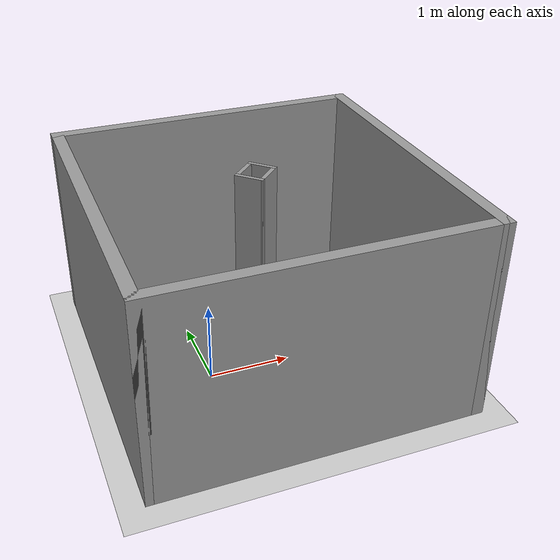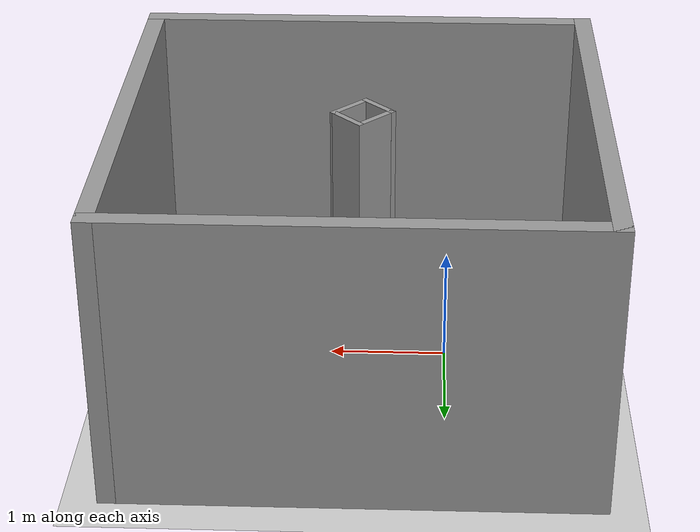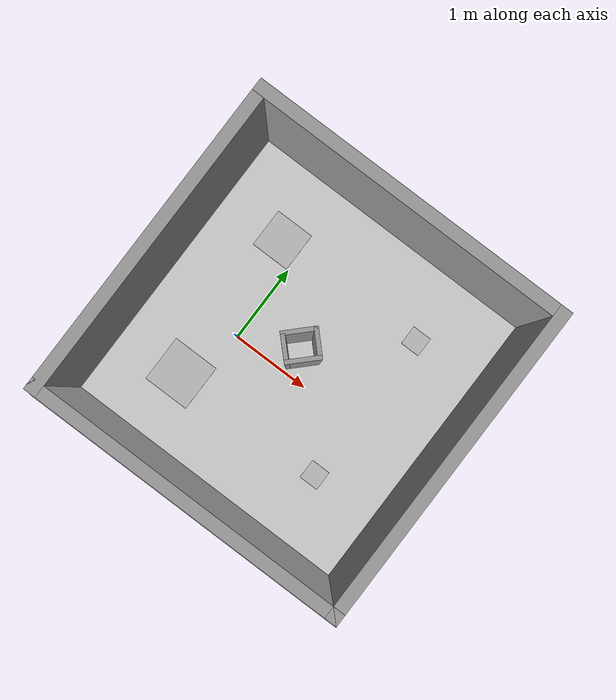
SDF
<?xml version="1.0" ?>
<sdf version="1.4">
  <world name="default">
    <include>
      <uri>model://ground_plane</uri>
    </include>
    <include>
      <uri>model://sun</uri>
    </include>

    <!-- Only one ROS interface plugin is required per world, as any other plugin can connect a Gazebo
         topic to a ROS topic (or vise versa). -->
    <plugin name="ros_interface_plugin" filename="librotors_gazebo_ros_interface_plugin.so"/>

    <spherical_coordinates>
      <surface_model>EARTH_WGS84</surface_model>
      <latitude_deg>47.3667</latitude_deg>
      <longitude_deg>8.5500</longitude_deg>
      <elevation>500.0</elevation>
      <heading_deg>0</heading_deg>
    </spherical_coordinates>
    <physics type='ode'>
      <ode>
        <solver>
          <type>quick</type>
          <iters>1000</iters>
          <sor>1.3</sor>
        </solver>
        <constraints>
          <cfm>0</cfm>
          <erp>0.2</erp>
          <contact_max_correcting_vel>100</contact_max_correcting_vel>
          <contact_surface_layer>0.001</contact_surface_layer>
        </constraints>
      </ode>
      <max_step_size>0.01</max_step_size>
      <real_time_factor>1</real_time_factor>
      <real_time_update_rate>100</real_time_update_rate>
      <gravity>0 0 -9.8</gravity>
    </physics>
    <model name='Untitled'>
      <pose>0.724051 0.24636 0 0 -0 0</pose>
      <link name='Wall_10'>
        <collision name='Wall_10_Collision'>
          <geometry>
            <box>
              <size>4 0.15 2.5</size>
            </box>
          </geometry>
          <pose>0 0 1.25 0 -0 0</pose>
          <max_contacts>10</max_contacts>
          <surface>
            <contact>
              <ode/>
            </contact>
            <bounce/>
            <friction>
              <torsional>
                <ode/>
              </torsional>
              <ode/>
            </friction>
          </surface>
        </collision>
        <visual name='Wall_10_Visual'>
          <pose>0 0 1.25 0 -0 0</pose>
          <geometry>
            <box>
              <size>4 0.15 2.5</size>
            </box>
          </geometry>
          <material>
            <script>
              <uri>file://media/materials/scripts/gazebo.material</uri>
              <name>Gazebo/Grey</name>
            </script>
            <ambient>1 1 1 1</ambient>
          </material>
          <meta>
            <layer>0</layer>
          </meta>
        </visual>
        <pose>1.925 0 0 0 -0 1.5708</pose>
        <self_collide>0</self_collide>
        <enable_wind>0</enable_wind>
        <kinematic>0</kinematic>
      </link>
      <link name='Wall_13'>
        <collision name='Wall_13_Collision'>
          <geometry>
            <box>
              <size>4 0.15 2.5</size>
            </box>
          </geometry>
          <pose>0 0 1.25 0 -0 0</pose>
          <max_contacts>10</max_contacts>
          <surface>
            <contact>
              <ode/>
            </contact>
            <bounce/>
            <friction>
              <torsional>
                <ode/>
              </torsional>
              <ode/>
            </friction>
          </surface>
        </collision>
        <visual name='Wall_13_Visual'>
          <pose>0 0 1.25 0 -0 0</pose>
          <geometry>
            <box>
              <size>4 0.15 2.5</size>
            </box>
          </geometry>
          <material>
            <script>
              <uri>file://media/materials/scripts/gazebo.material</uri>
              <name>Gazebo/Grey</name>
            </script>
            <ambient>1 1 1 1</ambient>
          </material>
          <meta>
            <layer>0</layer>
          </meta>
        </visual>
        <pose>0 1.925 0 0 -0 3.14159</pose>
        <self_collide>0</self_collide>
        <enable_wind>0</enable_wind>
        <kinematic>0</kinematic>
      </link>
      <link name='Wall_14'>
        <collision name='Wall_14_Collision'>
          <geometry>
            <box>
              <size>4 0.15 2.5</size>
            </box>
          </geometry>
          <pose>0 0 1.25 0 -0 0</pose>
          <max_contacts>10</max_contacts>
          <surface>
            <contact>
              <ode/>
            </contact>
            <bounce/>
            <friction>
              <torsional>
                <ode/>
              </torsional>
              <ode/>
            </friction>
          </surface>
        </collision>
        <visual name='Wall_14_Visual'>
          <pose>0 0 1.25 0 -0 0</pose>
          <geometry>
            <box>
              <size>4 0.15 2.5</size>
            </box>
          </geometry>
          <material>
            <script>
              <uri>file://media/materials/scripts/gazebo.material</uri>
              <name>Gazebo/Grey</name>
            </script>
            <ambient>1 1 1 1</ambient>
          </material>
          <meta>
            <layer>0</layer>
          </meta>
        </visual>
        <pose>-1.925 0 0 0 -0 -1.5708</pose>
        <self_collide>0</self_collide>
        <enable_wind>0</enable_wind>
        <kinematic>0</kinematic>
      </link>
      <link name='Wall_21'>
        <collision name='Wall_21_Collision'>
          <geometry>
            <box>
              <size>0.400395 0.05 2.5</size>
            </box>
          </geometry>
          <pose>0 0 1.25 0 -0 0</pose>
          <max_contacts>10</max_contacts>
          <surface>
            <contact>
              <ode/>
            </contact>
            <bounce/>
            <friction>
              <torsional>
                <ode/>
              </torsional>
              <ode/>
            </friction>
          </surface>
        </collision>
        <visual name='Wall_21_Visual'>
          <pose>0 0 1.25 0 -0 0</pose>
          <geometry>
            <box>
              <size>0.400395 0.05 2.5</size>
            </box>
          </geometry>
          <material>
            <script>
              <uri>file://media/materials/scripts/gazebo.material</uri>
              <name>Gazebo/Grey</name>
            </script>
            <ambient>1 1 1 1</ambient>
          </material>
          <meta>
            <layer>0</layer>
          </meta>
        </visual>
        <pose>-0.119051 0.17064 0 0 -0 0.785398</pose>
        <self_collide>0</self_collide>
        <enable_wind>0</enable_wind>
        <kinematic>0</kinematic>
      </link>
      <link name='Wall_22'>
        <collision name='Wall_22_Collision'>
          <geometry>
            <box>
              <size>0.35 0.05 2.5</size>
            </box>
          </geometry>
          <pose>0 0 1.25 0 -0 0</pose>
          <max_contacts>10</max_contacts>
          <surface>
            <contact>
              <ode/>
            </contact>
            <bounce/>
            <friction>
              <torsional>
                <ode/>
              </torsional>
              <ode/>
            </friction>
          </surface>
        </collision>
        <visual name='Wall_22_Visual'>
          <pose>0 0 1.25 0 -0 0</pose>
          <geometry>
            <box>
              <size>0.35 0.05 2.5</size>
            </box>
          </geometry>
          <material>
            <script>
              <uri>file://media/materials/scripts/gazebo.material</uri>
              <name>Gazebo/Grey</name>
            </script>
            <ambient>1 1 1 1</ambient>
          </material>
          <meta>
            <layer>0</layer>
          </meta>
        </visual>
        <pose>0.110449 0.18764 0 0 -0 -0.792457</pose>
        <self_collide>0</self_collide>
        <enable_wind>0</enable_wind>
        <kinematic>0</kinematic>
      </link>
      <link name='Wall_24'>
        <collision name='Wall_24_Collision'>
          <geometry>
            <box>
              <size>0.35 0.05 2.5</size>
            </box>
          </geometry>
          <pose>0 0 1.25 0 -0 0</pose>
          <max_contacts>10</max_contacts>
          <surface>
            <contact>
              <ode/>
            </contact>
            <bounce/>
            <friction>
              <torsional>
                <ode/>
              </torsional>
              <ode/>
            </friction>
          </surface>
        </collision>
        <visual name='Wall_24_Visual'>
          <pose>0 0 1.25 0 -0 0</pose>
          <geometry>
            <box>
              <size>0.35 0.05 2.5</size>
            </box>
          </geometry>
          <material>
            <script>
              <uri>file://media/materials/scripts/gazebo.material</uri>
              <name>Gazebo/Grey</name>
            </script>
            <ambient>1 1 1 1</ambient>
          </material>
          <meta>
            <layer>0</layer>
          </meta>
        </visual>
        <pose>-0.137051 -0.05936 0 0 -0 -0.785398</pose>
        <self_collide>0</self_collide>
        <enable_wind>0</enable_wind>
        <kinematic>0</kinematic>
      </link>
      <link name='Wall_27'>
        <collision name='Wall_27_Collision'>
          <geometry>
            <box>
              <size>0.398597 0.05 2.5</size>
            </box>
          </geometry>
          <pose>0 0 1.25 0 -0 0</pose>
          <max_contacts>10</max_contacts>
          <surface>
            <contact>
              <ode/>
            </contact>
            <bounce/>
            <friction>
              <torsional>
                <ode/>
              </torsional>
              <ode/>
            </friction>
          </surface>
        </collision>
        <visual name='Wall_27_Visual'>
          <pose>0 0 1.25 0 -0 0</pose>
          <geometry>
            <box>
              <size>0.398597 0.05 2.5</size>
            </box>
          </geometry>
          <material>
            <script>
              <uri>file://media/materials/scripts/gazebo.material</uri>
              <name>Gazebo/Grey</name>
            </script>
            <ambient>1 1 1 1</ambient>
          </material>
          <meta>
            <layer>0</layer>
          </meta>
        </visual>
        <pose>0.092449 -0.04236 0 0 -0 0.78337</pose>
        <self_collide>0</self_collide>
        <enable_wind>0</enable_wind>
        <kinematic>0</kinematic>
      </link>
      <link name='Wall_9'>
        <collision name='Wall_9_Collision'>
          <geometry>
            <box>
              <size>4 0.15 2.5</size>
            </box>
          </geometry>
          <pose>0 0 1.25 0 -0 0</pose>
          <max_contacts>10</max_contacts>
          <surface>
            <contact>
              <ode/>
            </contact>
            <bounce/>
            <friction>
              <torsional>
                <ode/>
              </torsional>
              <ode/>
            </friction>
          </surface>
        </collision>
        <visual name='Wall_9_Visual'>
          <pose>0 0 1.25 0 -0 0</pose>
          <geometry>
            <box>
              <size>4 0.15 2.5</size>
            </box>
          </geometry>
          <material>
            <script>
              <uri>file://media/materials/scripts/gazebo.material</uri>
              <name>Gazebo/Grey</name>
            </script>
            <ambient>1 1 1 1</ambient>
          </material>
          <meta>
            <layer>0</layer>
          </meta>
        </visual>
        <pose>0 -1.925 0 0 -0 0</pose>
        <self_collide>0</self_collide>
        <enable_wind>0</enable_wind>
        <kinematic>0</kinematic>
      </link>
      <link name='link_car'>
        <pose>1 1 0 0 -0 0</pose>
        <inertial>
          <mass>0.01</mass>
          <inertia>
            <ixx>0.00058</ixx>
            <ixy>0</ixy>
            <ixz>0</ixz>
            <iyy>0.00058</iyy>
            <iyz>0</iyz>
            <izz>0.00019</izz>
          </inertia>
        </inertial>
        <collision name='collision'>
          <geometry>
            <box>
              <size>0.25 0.25 0.01</size>
            </box>
          </geometry>
          <max_contacts>10</max_contacts>
          <surface>
            <contact>
              <ode/>
            </contact>
            <bounce/>
            <friction>
              <torsional>
                <ode/>
              </torsional>
              <ode/>
            </friction>
          </surface>
        </collision>
        <visual name='visual_car'>
          <geometry>
            <box>
              <size>0.25 0.25 0.01</size>
            </box>
          </geometry>
          <material>
            <script>
              <uri>model://gx/materials/scripts</uri>
              <uri>model://gx/materials/textures</uri>
              <name>Mark/car</name>
            </script>
          </material>
        </visual>
        <self_collide>0</self_collide>
        <enable_wind>0</enable_wind>
        <kinematic>0</kinematic>
      </link>
      <link name='link_w'>
        <pose>1 -1 0 0 -0 0</pose>
        <inertial>
          <mass>0.1</mass>
          <inertia>
            <ixx>0.00058</ixx>
            <ixy>0</ixy>
            <ixz>0</ixz>
            <iyy>0.00058</iyy>
            <iyz>0</iyz>
            <izz>0.00019</izz>
          </inertia>
        </inertial>
        <collision name='collision'>
          <geometry>
            <box>
              <size>0.25 0.25 0.01</size>
            </box>
          </geometry>
          <max_contacts>10</max_contacts>
          <surface>
            <contact>
              <ode/>
            </contact>
            <bounce/>
            <friction>
              <torsional>
                <ode/>
              </torsional>
              <ode/>
            </friction>
          </surface>
        </collision>
        <visual name='visual'>
          <geometry>
            <box>
              <size>0.25 0.25 0.01</size>
            </box>
          </geometry>
          <material>
            <script>
              <uri>model://gx/materials/scripts</uri>
              <uri>model://gx/materials/textures</uri>
              <name>Mark/w</name>
            </script>
          </material>
        </visual>
        <self_collide>0</self_collide>
        <enable_wind>0</enable_wind>
        <kinematic>0</kinematic>
      </link>
      <link name='link_h'>
        <pose>-1 -1 0 0 -0 0</pose>
        <inertial>
          <mass>0.1</mass>
          <inertia>
            <ixx>0.00058</ixx>
            <ixy>0</ixy>
            <ixz>0</ixz>
            <iyy>0.00058</iyy>
            <iyz>0</iyz>
            <izz>0.00019</izz>
          </inertia>
        </inertial>
        <collision name='collision'>
          <geometry>
            <box>
              <size>0.6 0.6 0.01</size>
            </box>
          </geometry>
          <max_contacts>10</max_contacts>
          <surface>
            <contact>
              <ode/>
            </contact>
            <bounce/>
            <friction>
              <torsional>
                <ode/>
              </torsional>
              <ode/>
            </friction>
          </surface>
        </collision>
        <visual name='visual'>
          <geometry>
            <box>
              <size>0.6 0.6 0.01</size>
            </box>
          </geometry>
          <material>
            <script>
              <uri>model://gx/materials/scripts</uri>
              <uri>model://gx/materials/textures</uri>
              <name>Mark/h</name>
            </script>
          </material>
        </visual>
        <self_collide>0</self_collide>
        <enable_wind>0</enable_wind>
        <kinematic>0</kinematic>
      </link>
      <link name='link'>
        <pose>-1 1 0 0 -0 0</pose>
        <inertial>
          <mass>0.1</mass>
          <inertia>
            <ixx>0.00058</ixx>
            <ixy>0</ixy>
            <ixz>0</ixz>
            <iyy>0.00058</iyy>
            <iyz>0</iyz>
            <izz>0.00019</izz>
          </inertia>
        </inertial>
        <collision name='collision'>
          <geometry>
            <box>
              <size>0.5 0.5 0.01</size>
            </box>
          </geometry>
          <max_contacts>10</max_contacts>
          <surface>
            <contact>
              <ode/>
            </contact>
            <bounce/>
            <friction>
              <torsional>
                <ode/>
              </torsional>
              <ode/>
            </friction>
          </surface>
        </collision>
        <visual name='visual'>
          <geometry>
            <box>
              <size>0.5 0.5 0.01</size>
            </box>
          </geometry>
          <material>
            <script>
              <uri>model://gx/materials/scripts</uri>
              <uri>model://gx/materials/textures</uri>
              <name>Mark/ring</name>
            </script>
          </material>
        </visual>
        <self_collide>0</self_collide>
        <enable_wind>0</enable_wind>
        <kinematic>0</kinematic>
      </link>
    </model>

  </world>
</sdf>
